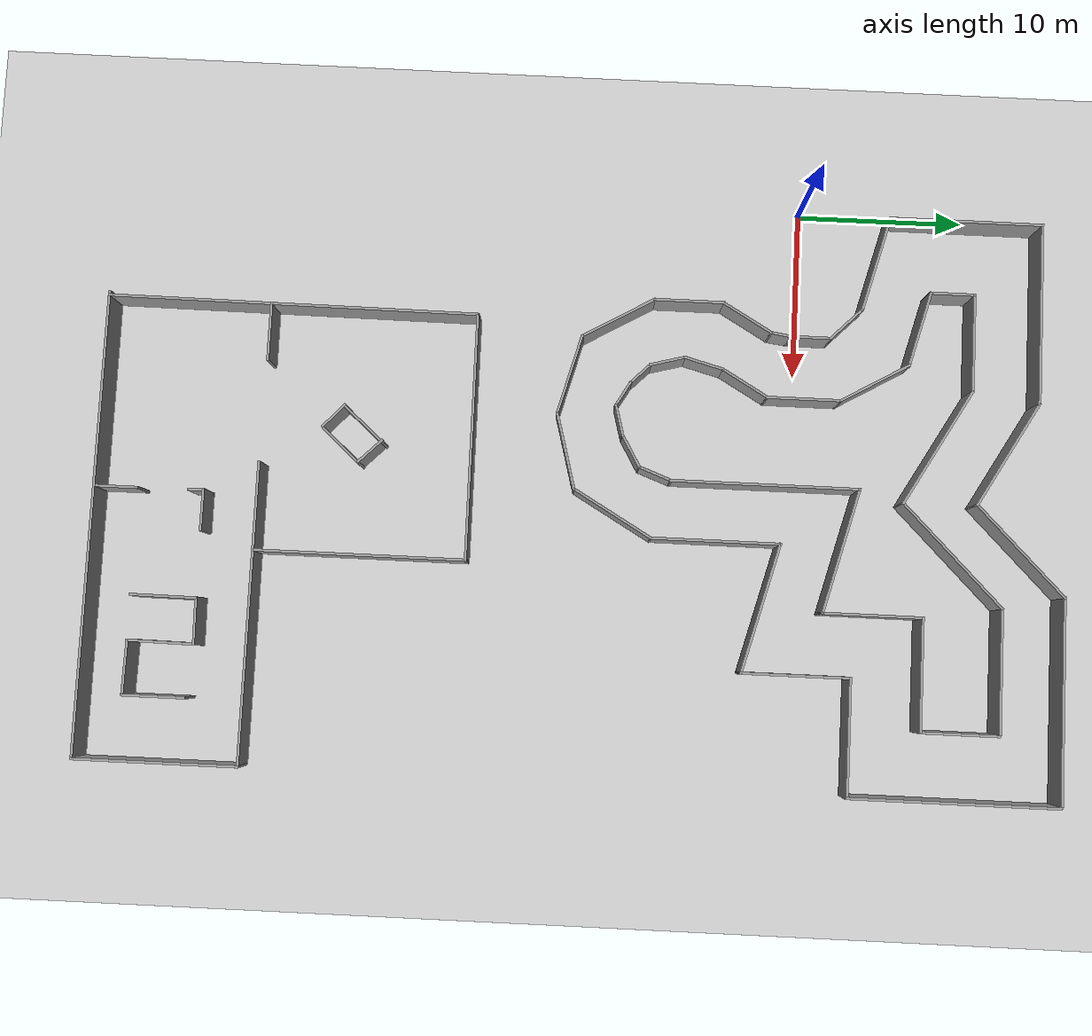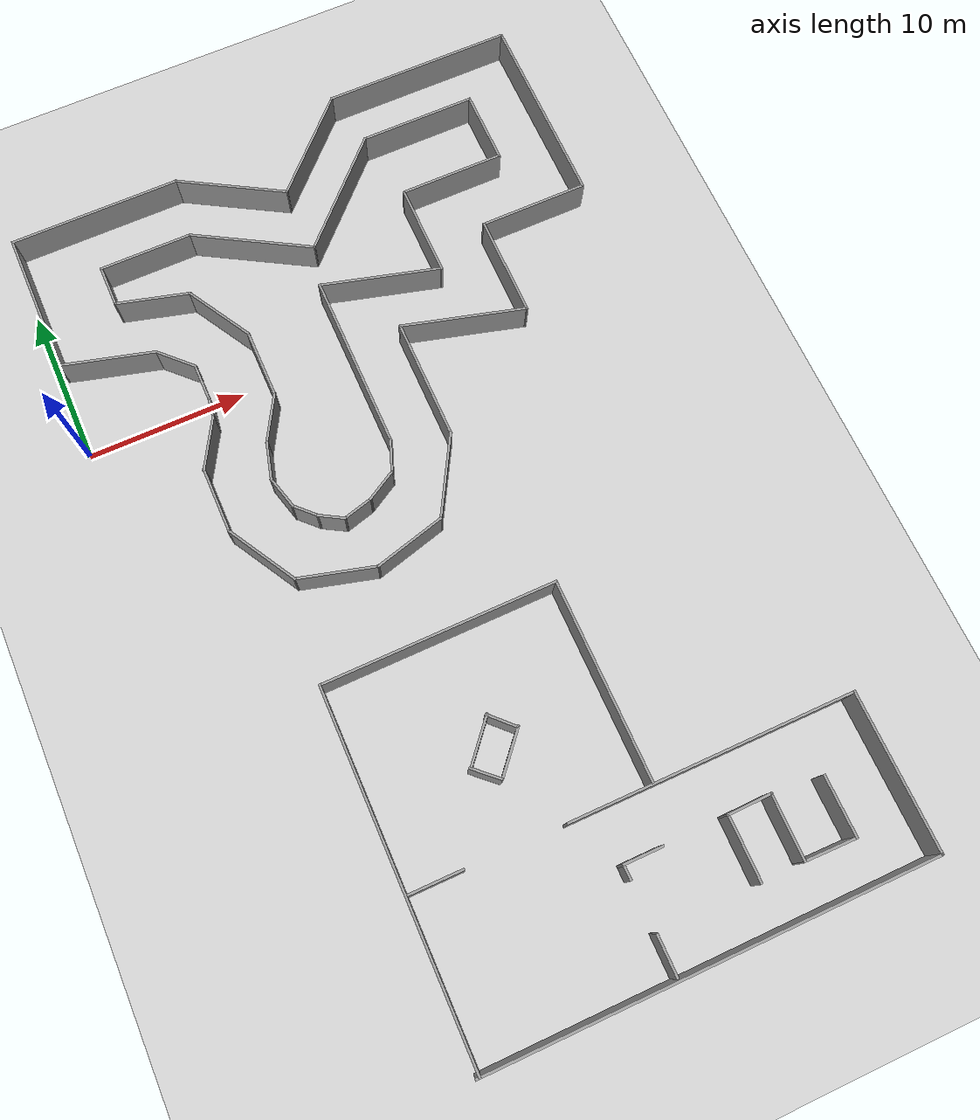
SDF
<sdf version="1.7">
 <world name="default">
  <model name="ground_plane">
   <static>1</static>
   <link name="link">
    <collision name="collision">
     <geometry><plane><normal>0 0 1</normal><size>100 100</size></plane></geometry>
     <surface><friction><ode><mu>100</mu><mu2>50</mu2></ode></friction></surface>
    </collision>
    <visual name="visual">
     <cast_shadows>0</cast_shadows>
     <geometry><plane><normal>0 0 1</normal><size>100 100</size></plane></geometry>
     <material>
      <script><uri>file://media/materials/scripts/gazebo.material</uri><name>Gazebo/Grey</name></script>
     </material>
    </visual>
   </link>
  </model>
  <model name="map2-Scaled2.5">
   <pose>17.6419 0.92612 0 0 -0 0</pose>
   <link name="Wall_39">
    <collision name="Wall_39_Collision">
     <geometry><box><size>6 0.15 2.5</size></box></geometry>
     <pose>0 0 1.25 0 -0 0</pose>
    </collision>
    <visual name="Wall_39_Visual">
     <pose>0 0 1.25 0 -0 0</pose>
     <geometry><box><size>6 0.15 2.5</size></box></geometry>
     <material>
      <script><uri>file://media/materials/scripts/gazebo.material</uri><name>Gazebo/Grey</name></script>
      <ambient>1 1 1 1</ambient>
     </material>
     <meta><layer>0</layer></meta>
    </visual>
    <pose>-14.3142 3.53465 0 0 -0 2.87979</pose>
   </link>
   <link name="Wall_40">
    <collision name="Wall_40_Collision">
     <geometry><box><size>9.25 0.15 2.5</size></box></geometry>
     <pose>0 0 1.25 0 -0 0</pose>
    </collision>
    <visual name="Wall_40_Visual">
     <pose>0 0 1.25 0 -0 0</pose>
     <geometry><box><size>9.25 0.15 2.5</size></box></geometry>
     <material>
      <script><uri>file://media/materials/scripts/gazebo.material</uri><name>Gazebo/Grey</name></script>
      <ambient>1 1 1 1</ambient>
     </material>
     <meta><layer>0</layer></meta>
    </visual>
    <pose>-17.1396 8.8417 0 0 -0 1.5708</pose>
   </link>
   <link name="Wall_41">
    <collision name="Wall_41_Collision">
     <geometry><box><size>11 0.15 2.5</size></box></geometry>
     <pose>0 0 1.25 0 -0 0</pose>
    </collision>
    <visual name="Wall_41_Visual">
     <pose>0 0 1.25 0 -0 0</pose>
     <geometry><box><size>11 0.15 2.5</size></box></geometry>
     <material>
      <script><uri>file://media/materials/scripts/gazebo.material</uri><name>Gazebo/Grey</name></script>
      <ambient>1 1 1 1</ambient>
     </material>
     <meta><layer>0</layer></meta>
    </visual>
    <pose>-11.7146 13.3917 0 0 -0 0</pose>
   </link>
   <link name="Wall_42">
    <collision name="Wall_42_Collision">
     <geometry><box><size>7.25 0.15 2.5</size></box></geometry>
     <pose>0 0 1.25 0 -0 0</pose>
    </collision>
    <visual name="Wall_42_Visual">
     <pose>0 0 1.25 0 -0 0</pose>
     <geometry><box><size>7.25 0.15 2.5</size></box></geometry>
     <material>
      <script><uri>file://media/materials/scripts/gazebo.material</uri><name>Gazebo/Grey</name></script>
      <ambient>1 1 1 1</ambient>
     </material>
     <meta><layer>0</layer></meta>
    </visual>
    <pose>-3.21519 11.6167 0 0 -0 -0.523599</pose>
   </link>
   <link name="Wall_43">
    <collision name="Wall_43_Collision">
     <geometry><box><size>7.5 0.15 2.5</size></box></geometry>
     <pose>0 0 1.25 0 -0 0</pose>
    </collision>
    <visual name="Wall_43_Visual">
     <pose>0 0 1.25 0 -0 0</pose>
     <geometry><box><size>7.5 0.15 2.5</size></box></geometry>
     <material>
      <script><uri>file://media/materials/scripts/gazebo.material</uri><name>Gazebo/Grey</name></script>
      <ambient>1 1 1 1</ambient>
     </material>
     <meta><layer>0</layer></meta>
    </visual>
    <pose>2.45782 12.4403 0 0 -0 0.785398</pose>
   </link>
   <link name="Wall_44">
    <collision name="Wall_44_Collision">
     <geometry><box><size>12.25 0.15 2.5</size></box></geometry>
     <pose>0 0 1.25 0 -0 0</pose>
    </collision>
    <visual name="Wall_44_Visual">
     <pose>0 0 1.25 0 -0 0</pose>
     <geometry><box><size>12.25 0.15 2.5</size></box></geometry>
     <material>
      <script><uri>file://media/materials/scripts/gazebo.material</uri><name>Gazebo/Grey</name></script>
      <ambient>1 1 1 1</ambient>
     </material>
     <meta><layer>0</layer></meta>
    </visual>
    <pose>11.1064 15.0389 0 0 -0 0</pose>
   </link>
   <link name="Wall_45">
    <collision name="Wall_45_Collision">
     <geometry><box><size>12.5 0.15 2.5</size></box></geometry>
     <pose>0 0 1.25 0 -0 0</pose>
    </collision>
    <visual name="Wall_45_Visual">
     <pose>0 0 1.25 0 -0 0</pose>
     <geometry><box><size>12.5 0.15 2.5</size></box></geometry>
     <material>
      <script><uri>file://media/materials/scripts/gazebo.material</uri><name>Gazebo/Grey</name></script>
      <ambient>1 1 1 1</ambient>
     </material>
     <meta><layer>0</layer></meta>
    </visual>
    <pose>17.1564 8.86393 0 0 -0 -1.5708</pose>
   </link>
   <link name="Wall_46">
    <collision name="Wall_46_Collision">
     <geometry><box><size>7 0.15 2.5</size></box></geometry>
     <pose>0 0 1.25 0 -0 0</pose>
    </collision>
    <visual name="Wall_46_Visual">
     <pose>0 0 1.25 0 -0 0</pose>
     <geometry><box><size>7 0.15 2.5</size></box></geometry>
     <material>
      <script><uri>file://media/materials/scripts/gazebo.material</uri><name>Gazebo/Grey</name></script>
      <ambient>1 1 1 1</ambient>
     </material>
     <meta><layer>0</layer></meta>
    </visual>
    <pose>13.7314 2.68893 0 0 -0 3.14159</pose>
   </link>
   <link name="Wall_47">
    <collision name="Wall_47_Collision">
     <geometry><box><size>6.5 0.15 2.5</size></box></geometry>
     <pose>0 0 1.25 0 -0 0</pose>
    </collision>
    <visual name="Wall_47_Visual">
     <pose>0 0 1.25 0 -0 0</pose>
     <geometry><box><size>6.5 0.15 2.5</size></box></geometry>
     <material>
      <script><uri>file://media/materials/scripts/gazebo.material</uri><name>Gazebo/Grey</name></script>
      <ambient>1 1 1 1</ambient>
     </material>
     <meta><layer>0</layer></meta>
    </visual>
    <pose>10.3064 -0.486068 0 0 -0 -1.5708</pose>
   </link>
   <link name="Wall_48">
    <collision name="Wall_48_Collision">
     <geometry><box><size>8 0.15 2.5</size></box></geometry>
     <pose>0 0 1.25 0 -0 0</pose>
    </collision>
    <visual name="Wall_48_Visual">
     <pose>0 0 1.25 0 -0 0</pose>
     <geometry><box><size>8 0.15 2.5</size></box></geometry>
     <material>
      <script><uri>file://media/materials/scripts/gazebo.material</uri><name>Gazebo/Grey</name></script>
      <ambient>1 1 1 1</ambient>
     </material>
     <meta><layer>0</layer></meta>
    </visual>
    <pose>6.51518 -2.6452 0 0 -0 2.87979</pose>
   </link>
   <link name="Wall_49">
    <collision name="Wall_49_Collision">
     <geometry><box><size>7.75 0.15 2.5</size></box></geometry>
     <pose>0 0 1.25 0 -0 0</pose>
    </collision>
    <visual name="Wall_49_Visual">
     <pose>0 0 1.25 0 -0 0</pose>
     <geometry><box><size>7.75 0.15 2.5</size></box></geometry>
     <material>
      <script><uri>file://media/materials/scripts/gazebo.material</uri><name>Gazebo/Grey</name></script>
      <ambient>1 1 1 1</ambient>
     </material>
     <meta><layer>0</layer></meta>
    </visual>
    <pose>2.72392 -5.42934 0 0 -0 -1.5708</pose>
   </link>
   <link name="Wall_50">
    <collision name="Wall_50_Collision">
     <geometry><box><size>5.5 0.15 2.5</size></box></geometry>
     <pose>0 0 1.25 0 -0 0</pose>
    </collision>
    <visual name="Wall_50_Visual">
     <pose>0 0 1.25 0 -0 0</pose>
     <geometry><box><size>5.5 0.15 2.5</size></box></geometry>
     <material>
      <script><uri>file://media/materials/scripts/gazebo.material</uri><name>Gazebo/Grey</name></script>
      <ambient>1 1 1 1</ambient>
     </material>
     <meta><layer>0</layer></meta>
    </visual>
    <pose>1.38642 -11.546 0 0 -0 -2.0944</pose>
   </link>
   <link name="Wall_51">
    <collision name="Wall_51_Collision">
     <geometry><box><size>4.75 0.15 2.5</size></box></geometry>
     <pose>0 0 1.25 0 -0 0</pose>
    </collision>
    <visual name="Wall_51_Visual">
     <pose>0 0 1.25 0 -0 0</pose>
     <geometry><box><size>4.75 0.15 2.5</size></box></geometry>
     <material>
      <script><uri>file://media/materials/scripts/gazebo.material</uri><name>Gazebo/Grey</name></script>
      <ambient>1 1 1 1</ambient>
     </material>
     <meta><layer>0</layer></meta>
    </visual>
    <pose>-2.17271 -14.4579 0 0 -0 -2.87979</pose>
   </link>
   <link name="Wall_52">
    <collision name="Wall_52_Collision">
     <geometry><box><size>5 0.15 2.5</size></box></geometry>
     <pose>0 0 1.25 0 -0 0</pose>
    </collision>
    <visual name="Wall_52_Visual">
     <pose>0 0 1.25 0 -0 0</pose>
     <geometry><box><size>5 0.15 2.5</size></box></geometry>
     <material>
      <script><uri>file://media/materials/scripts/gazebo.material</uri><name>Gazebo/Grey</name></script>
      <ambient>1 1 1 1</ambient>
     </material>
     <meta><layer>0</layer></meta>
    </visual>
    <pose>-6.73671 -14.4255 0 0 -0 2.87979</pose>
   </link>
   <link name="Wall_53">
    <collision name="Wall_53_Collision">
     <geometry><box><size>5 0.15 2.5</size></box></geometry>
     <pose>0 0 1.25 0 -0 0</pose>
    </collision>
    <visual name="Wall_53_Visual">
     <pose>0 0 1.25 0 -0 0</pose>
     <geometry><box><size>5 0.15 2.5</size></box></geometry>
     <material>
      <script><uri>file://media/materials/scripts/gazebo.material</uri><name>Gazebo/Grey</name></script>
      <ambient>1 1 1 1</ambient>
     </material>
     <meta><layer>0</layer></meta>
    </visual>
    <pose>-10.2916 -11.6978 0 0 -0 2.0944</pose>
   </link>
   <link name="Wall_54">
    <collision name="Wall_54_Collision">
     <geometry><box><size>4.25 0.15 2.5</size></box></geometry>
     <pose>0 0 1.25 0 -0 0</pose>
    </collision>
    <visual name="Wall_54_Visual">
     <pose>0 0 1.25 0 -0 0</pose>
     <geometry><box><size>4.25 0.15 2.5</size></box></geometry>
     <material>
      <script><uri>file://media/materials/scripts/gazebo.material</uri><name>Gazebo/Grey</name></script>
      <ambient>1 1 1 1</ambient>
     </material>
     <meta><layer>0</layer></meta>
    </visual>
    <pose>-11.5041 -7.54765 0 0 -0 1.5708</pose>
   </link>
   <link name="Wall_55">
    <collision name="Wall_55_Collision">
     <geometry><box><size>3.5 0.15 2.5</size></box></geometry>
     <pose>0 0 1.25 0 -0 0</pose>
    </collision>
    <visual name="Wall_55_Visual">
     <pose>0 0 1.25 0 -0 0</pose>
     <geometry><box><size>3.5 0.15 2.5</size></box></geometry>
     <material>
      <script><uri>file://media/materials/scripts/gazebo.material</uri><name>Gazebo/Grey</name></script>
      <ambient>1 1 1 1</ambient>
     </material>
     <meta><layer>0</layer></meta>
    </visual>
    <pose>-10.6666 -4.04705 0 0 -0 1.0472</pose>
   </link>
   <link name="Wall_57">
    <collision name="Wall_57_Collision">
     <geometry><box><size>3.25 0.15 2.5</size></box></geometry>
     <pose>0 0 1.25 0 -0 0</pose>
    </collision>
    <visual name="Wall_57_Visual">
     <pose>0 0 1.25 0 -0 0</pose>
     <geometry><box><size>3.25 0.15 2.5</size></box></geometry>
     <material>
      <script><uri>file://media/materials/scripts/gazebo.material</uri><name>Gazebo/Grey</name></script>
      <ambient>1 1 1 1</ambient>
     </material>
     <meta><layer>0</layer></meta>
    </visual>
    <pose>-6.71391 -4.04005 0 0 -0 1.0472</pose>
   </link>
   <link name="Wall_58">
    <collision name="Wall_58_Collision">
     <geometry><box><size>4.5 0.15 2.5</size></box></geometry>
     <pose>0 0 1.25 0 -0 0</pose>
    </collision>
    <visual name="Wall_58_Visual">
     <pose>0 0 1.25 0 -0 0</pose>
     <geometry><box><size>4.5 0.15 2.5</size></box></geometry>
     <material>
      <script><uri>file://media/materials/scripts/gazebo.material</uri><name>Gazebo/Grey</name></script>
      <ambient>1 1 1 1</ambient>
     </material>
     <meta><layer>0</layer></meta>
    </visual>
    <pose>-5.93891 -0.522716 0 0 -0 1.5708</pose>
   </link>
   <link name="Wall_59">
    <collision name="Wall_59_Collision">
     <geometry><box><size>4.75 0.15 2.5</size></box></geometry>
     <pose>0 0 1.25 0 -0 0</pose>
    </collision>
    <visual name="Wall_59_Visual">
     <pose>0 0 1.25 0 -0 0</pose>
     <geometry><box><size>4.75 0.15 2.5</size></box></geometry>
     <material>
      <script><uri>file://media/materials/scripts/gazebo.material</uri><name>Gazebo/Grey</name></script>
      <ambient>1 1 1 1</ambient>
     </material>
     <meta><layer>0</layer></meta>
    </visual>
    <pose>-7.08891 3.64414 0 0 -0 2.0944</pose>
   </link>
   <link name="Wall_60">
    <collision name="Wall_60_Collision">
     <geometry><box><size>4.75 0.15 2.5</size></box></geometry>
     <pose>0 0 1.25 0 -0 0</pose>
    </collision>
    <visual name="Wall_60_Visual">
     <pose>0 0 1.25 0 -0 0</pose>
     <geometry><box><size>4.75 0.15 2.5</size></box></geometry>
     <material>
      <script><uri>file://media/materials/scripts/gazebo.material</uri><name>Gazebo/Grey</name></script>
      <ambient>1 1 1 1</ambient>
     </material>
     <meta><layer>0</layer></meta>
    </visual>
    <pose>-10.4605 6.23128 0 0 -0 2.87979</pose>
   </link>
   <link name="Wall_61">
    <collision name="Wall_61_Collision">
     <geometry><box><size>2.75 0.15 2.5</size></box></geometry>
     <pose>0 0 1.25 0 -0 0</pose>
    </collision>
    <visual name="Wall_61_Visual">
     <pose>0 0 1.25 0 -0 0</pose>
     <geometry><box><size>2.75 0.15 2.5</size></box></geometry>
     <material>
      <script><uri>file://media/materials/scripts/gazebo.material</uri><name>Gazebo/Grey</name></script>
      <ambient>1 1 1 1</ambient>
     </material>
     <meta><layer>0</layer></meta>
    </visual>
    <pose>-12.6822 8.12657 0 0 -0 1.5708</pose>
   </link>
   <link name="Wall_62">
    <collision name="Wall_62_Collision">
     <geometry><box><size>6 0.15 2.5</size></box></geometry>
     <pose>0 0 1.25 0 -0 0</pose>
    </collision>
    <visual name="Wall_62_Visual">
     <pose>0 0 1.25 0 -0 0</pose>
     <geometry><box><size>6 0.15 2.5</size></box></geometry>
     <material>
      <script><uri>file://media/materials/scripts/gazebo.material</uri><name>Gazebo/Grey</name></script>
      <ambient>1 1 1 1</ambient>
     </material>
     <meta><layer>0</layer></meta>
    </visual>
    <pose>-9.75717 9.42657 0 0 -0 0</pose>
   </link>
   <link name="Wall_63">
    <collision name="Wall_63_Collision">
     <geometry><box><size>8 0.15 2.5</size></box></geometry>
     <pose>0 0 1.25 0 -0 0</pose>
    </collision>
    <visual name="Wall_63_Visual">
     <pose>0 0 1.25 0 -0 0</pose>
     <geometry><box><size>8 0.15 2.5</size></box></geometry>
     <material>
      <script><uri>file://media/materials/scripts/gazebo.material</uri><name>Gazebo/Grey</name></script>
      <ambient>1 1 1 1</ambient>
     </material>
     <meta><layer>0</layer></meta>
    </visual>
    <pose>-3.43302 7.46407 0 0 -0 -0.523599</pose>
   </link>
   <link name="Wall_64">
    <collision name="Wall_64_Collision">
     <geometry><box><size>8.5 0.15 2.5</size></box></geometry>
     <pose>0 0 1.25 0 -0 0</pose>
    </collision>
    <visual name="Wall_64_Visual">
     <pose>0 0 1.25 0 -0 0</pose>
     <geometry><box><size>8.5 0.15 2.5</size></box></geometry>
     <material>
      <script><uri>file://media/materials/scripts/gazebo.material</uri><name>Gazebo/Grey</name></script>
      <ambient>1 1 1 1</ambient>
     </material>
     <meta><layer>0</layer></meta>
    </visual>
    <pose>2.9183 8.45374 0 0 -0 0.785398</pose>
   </link>
   <link name="Wall_65">
    <collision name="Wall_65_Collision">
     <geometry><box><size>7.5 0.15 2.5</size></box></geometry>
     <pose>0 0 1.25 0 -0 0</pose>
    </collision>
    <visual name="Wall_65_Visual">
     <pose>0 0 1.25 0 -0 0</pose>
     <geometry><box><size>7.5 0.15 2.5</size></box></geometry>
     <material>
      <script><uri>file://media/materials/scripts/gazebo.material</uri><name>Gazebo/Grey</name></script>
      <ambient>1 1 1 1</ambient>
     </material>
     <meta><layer>0</layer></meta>
    </visual>
    <pose>9.54547 11.4059 0 0 -0 0</pose>
   </link>
   <link name="Wall_66">
    <collision name="Wall_66_Collision">
     <geometry><box><size>4.75 0.15 2.5</size></box></geometry>
     <pose>0 0 1.25 0 -0 0</pose>
    </collision>
    <visual name="Wall_66_Visual">
     <pose>0 0 1.25 0 -0 0</pose>
     <geometry><box><size>4.75 0.15 2.5</size></box></geometry>
     <material>
      <script><uri>file://media/materials/scripts/gazebo.material</uri><name>Gazebo/Grey</name></script>
      <ambient>1 1 1 1</ambient>
     </material>
     <meta><layer>0</layer></meta>
    </visual>
    <pose>13.2205 9.10591 0 0 -0 -1.5708</pose>
   </link>
   <link name="Wall_67">
    <collision name="Wall_67_Collision">
     <geometry><box><size>6.75 0.15 2.5</size></box></geometry>
     <pose>0 0 1.25 0 -0 0</pose>
    </collision>
    <visual name="Wall_67_Visual">
     <pose>0 0 1.25 0 -0 0</pose>
     <geometry><box><size>6.75 0.15 2.5</size></box></geometry>
     <material>
      <script><uri>file://media/materials/scripts/gazebo.material</uri><name>Gazebo/Grey</name></script>
      <ambient>1 1 1 1</ambient>
     </material>
     <meta><layer>0</layer></meta>
    </visual>
    <pose>9.92047 6.80591 0 0 -0 3.14159</pose>
   </link>
   <link name="Wall_68">
    <collision name="Wall_68_Collision">
     <geometry><box><size>6 0.15 2.5</size></box></geometry>
     <pose>0 0 1.25 0 -0 0</pose>
    </collision>
    <visual name="Wall_68_Visual">
     <pose>0 0 1.25 0 -0 0</pose>
     <geometry><box><size>6 0.15 2.5</size></box></geometry>
     <material>
      <script><uri>file://media/materials/scripts/gazebo.material</uri><name>Gazebo/Grey</name></script>
      <ambient>1 1 1 1</ambient>
     </material>
     <meta><layer>0</layer></meta>
    </visual>
    <pose>6.62047 3.88091 0 0 -0 -1.5708</pose>
   </link>
   <link name="Wall_69">
    <collision name="Wall_69_Collision">
     <geometry><box><size>7.75 0.15 2.5</size></box></geometry>
     <pose>0 0 1.25 0 -0 0</pose>
    </collision>
    <visual name="Wall_69_Visual">
     <pose>0 0 1.25 0 -0 0</pose>
     <geometry><box><size>7.75 0.15 2.5</size></box></geometry>
     <material>
      <script><uri>file://media/materials/scripts/gazebo.material</uri><name>Gazebo/Grey</name></script>
      <ambient>1 1 1 1</ambient>
     </material>
     <meta><layer>0</layer></meta>
    </visual>
    <pose>2.94995 1.93942 0 0 -0 2.87979</pose>
   </link>
   <link name="Wall_70">
    <collision name="Wall_70_Collision">
     <geometry><box><size>11.25 0.15 2.5</size></box></geometry>
     <pose>0 0 1.25 0 -0 0</pose>
    </collision>
    <visual name="Wall_70_Visual">
     <pose>0 0 1.25 0 -0 0</pose>
     <geometry><box><size>11.25 0.15 2.5</size></box></geometry>
     <material>
      <script><uri>file://media/materials/scripts/gazebo.material</uri><name>Gazebo/Grey</name></script>
      <ambient>1 1 1 1</ambient>
     </material>
     <meta><layer>0</layer></meta>
    </visual>
    <pose>-0.720568 -2.62706 0 0 -0 -1.5708</pose>
   </link>
   <link name="Wall_72">
    <collision name="Wall_72_Collision">
     <geometry><box><size>2.75 0.15 2.5</size></box></geometry>
     <pose>0 0 1.25 0 -0 0</pose>
    </collision>
    <visual name="Wall_72_Visual">
     <pose>0 0 1.25 0 -0 0</pose>
     <geometry><box><size>2.75 0.15 2.5</size></box></geometry>
     <material>
      <script><uri>file://media/materials/scripts/gazebo.material</uri><name>Gazebo/Grey</name></script>
      <ambient>1 1 1 1</ambient>
     </material>
     <meta><layer>0</layer></meta>
    </visual>
    <pose>-10.5697 1.85837 0 0 -0 -0.785398</pose>
   </link>
   <link name="Wall_73">
    <collision name="Wall_73_Collision">
     <geometry><box><size>2.5 0.15 2.5</size></box></geometry>
     <pose>0 0 1.25 0 -0 0</pose>
    </collision>
    <visual name="Wall_73_Visual">
     <pose>0 0 1.25 0 -0 0</pose>
     <geometry><box><size>2.5 0.15 2.5</size></box></geometry>
     <material>
      <script><uri>file://media/materials/scripts/gazebo.material</uri><name>Gazebo/Grey</name></script>
      <ambient>1 1 1 1</ambient>
     </material>
     <meta><layer>0</layer></meta>
    </visual>
    <pose>-9.65044 -0.235872 0 0 -0 -1.5708</pose>
   </link>
   <link name="Wall_74">
    <collision name="Wall_74_Collision">
     <geometry><box><size>1.34897 0.15 2.5</size></box></geometry>
     <pose>0 0 1.25 0 -0 0</pose>
    </collision>
    <visual name="Wall_74_Visual">
     <pose>0 0 1.25 0 -0 0</pose>
     <geometry><box><size>1.34897 0.15 2.5</size></box></geometry>
     <material>
      <script><uri>file://media/materials/scripts/gazebo.material</uri><name>Gazebo/Grey</name></script>
      <ambient>1 1 1 1</ambient>
     </material>
     <meta><layer>0</layer></meta>
    </visual>
    <pose>-9.73976 -2.00367 0 0 -0 -1.72035</pose>
   </link>
   <link name="Wall_76">
    <collision name="Wall_76_Collision">
     <geometry><box><size>2.5 0.15 2.5</size></box></geometry>
     <pose>0 0 1.25 0 -0 0</pose>
    </collision>
    <visual name="Wall_76_Visual">
     <pose>0 0 1.25 0 -0 0</pose>
     <geometry><box><size>2.5 0.15 2.5</size></box></geometry>
     <material>
      <script><uri>file://media/materials/scripts/gazebo.material</uri><name>Gazebo/Grey</name></script>
      <ambient>1 1 1 1</ambient>
     </material>
     <meta><layer>0</layer></meta>
    </visual>
    <pose>-7.79303 -6.51736 0 0 -0 -1.8326</pose>
   </link>
   <link name="Wall_77">
    <collision name="Wall_77_Collision">
     <geometry><box><size>2.25 0.15 2.5</size></box></geometry>
     <pose>0 0 1.25 0 -0 0</pose>
    </collision>
    <visual name="Wall_77_Visual">
     <pose>0 0 1.25 0 -0 0</pose>
     <geometry><box><size>2.25 0.15 2.5</size></box></geometry>
     <material>
      <script><uri>file://media/materials/scripts/gazebo.material</uri><name>Gazebo/Grey</name></script>
      <ambient>1 1 1 1</ambient>
     </material>
     <meta><layer>0</layer></meta>
    </visual>
    <pose>-7.82538 -8.66654 0 0 -0 -1.309</pose>
   </link>
   <link name="Wall_78">
    <collision name="Wall_78_Collision">
     <geometry><box><size>1.75 0.15 2.5</size></box></geometry>
     <pose>0 0 1.25 0 -0 0</pose>
    </collision>
    <visual name="Wall_78_Visual">
     <pose>0 0 1.25 0 -0 0</pose>
     <geometry><box><size>1.75 0.15 2.5</size></box></geometry>
     <material>
      <script><uri>file://media/materials/scripts/gazebo.material</uri><name>Gazebo/Grey</name></script>
      <ambient>1 1 1 1</ambient>
     </material>
     <meta><layer>0</layer></meta>
    </visual>
    <pose>-6.98793 -10.2464 0 0 -0 -0.785398</pose>
   </link>
   <link name="Wall_79">
    <collision name="Wall_79_Collision">
     <geometry><box><size>1.75 0.15 2.5</size></box></geometry>
     <pose>0 0 1.25 0 -0 0</pose>
    </collision>
    <visual name="Wall_79_Visual">
     <pose>0 0 1.25 0 -0 0</pose>
     <geometry><box><size>1.75 0.15 2.5</size></box></geometry>
     <material>
      <script><uri>file://media/materials/scripts/gazebo.material</uri><name>Gazebo/Grey</name></script>
      <ambient>1 1 1 1</ambient>
     </material>
     <meta><layer>0</layer></meta>
    </visual>
    <pose>-5.72943 -11.2121 0 0 -0 -0.523599</pose>
   </link>
   <link name="Wall_80">
    <collision name="Wall_80_Collision">
     <geometry><box><size>2 0.15 2.5</size></box></geometry>
     <pose>0 0 1.25 0 -0 0</pose>
    </collision>
    <visual name="Wall_80_Visual">
     <pose>0 0 1.25 0 -0 0</pose>
     <geometry><box><size>2 0.15 2.5</size></box></geometry>
     <material>
      <script><uri>file://media/materials/scripts/gazebo.material</uri><name>Gazebo/Grey</name></script>
      <ambient>1 1 1 1</ambient>
     </material>
     <meta><layer>0</layer></meta>
    </visual>
    <pose>-4.14313 -11.3727 0 0 -0 0.261799</pose>
   </link>
   <link name="Wall_81">
    <collision name="Wall_81_Collision">
     <geometry><box><size>2.25 0.15 2.5</size></box></geometry>
     <pose>0 0 1.25 0 -0 0</pose>
    </collision>
    <visual name="Wall_81_Visual">
     <pose>0 0 1.25 0 -0 0</pose>
     <geometry><box><size>2.25 0.15 2.5</size></box></geometry>
     <material>
      <script><uri>file://media/materials/scripts/gazebo.material</uri><name>Gazebo/Grey</name></script>
      <ambient>1 1 1 1</ambient>
     </material>
     <meta><layer>0</layer></meta>
    </visual>
    <pose>-2.34032 -10.6083 0 0 -0 0.523599</pose>
   </link>
   <link name="Wall_82">
    <collision name="Wall_82_Collision">
     <geometry><box><size>2.18433 0.15 2.5</size></box></geometry>
     <pose>0 0 1.25 0 -0 0</pose>
    </collision>
    <visual name="Wall_82_Visual">
     <pose>0 0 1.25 0 -0 0</pose>
     <geometry><box><size>2.18433 0.15 2.5</size></box></geometry>
     <material>
      <script><uri>file://media/materials/scripts/gazebo.material</uri><name>Gazebo/Grey</name></script>
      <ambient>1 1 1 1</ambient>
     </material>
     <meta><layer>0</layer></meta>
    </visual>
    <pose>-1.07578 -9.13019 0 0 -0 1.21406</pose>
   </link>
   <static>1</static>
  </model>
  <model name="test3">
   <pose>20.9796 -30.0878 0 0 -0 0</pose>
   <link name="Wall_0">
    <collision name="Wall_0_Collision">
     <geometry><box><size>22.133 0.15 2.5</size></box></geometry>
     <pose>0 0 1.25 0 -0 0</pose>
    </collision>
    <visual name="Wall_0_Visual">
     <pose>0 0 1.25 0 -0 0</pose>
     <geometry><box><size>22.133 0.15 2.5</size></box></geometry>
     <material>
      <script><uri>file://media/materials/scripts/gazebo.material</uri><name>Gazebo/Grey</name></script>
      <ambient>1 1 1 1</ambient>
     </material>
     <meta><layer>0</layer></meta>
    </visual>
    <pose>-13.4868 -0.030616 0 0 -0 -1.57638</pose>
   </link>
   <link name="Wall_1">
    <collision name="Wall_1_Collision">
     <geometry><box><size>27.5678 0.15 2.5</size></box></geometry>
     <pose>0 0 1.25 0 -0 0</pose>
    </collision>
    <visual name="Wall_1_Visual">
     <pose>0 0 1.25 0 -0 0</pose>
     <geometry><box><size>27.5678 0.15 2.5</size></box></geometry>
     <material>
      <script><uri>file://media/materials/scripts/gazebo.material</uri><name>Gazebo/Grey</name></script>
      <ambient>1 1 1 1</ambient>
     </material>
     <meta><layer>0</layer></meta>
    </visual>
    <pose>-0.023189 -11.0219 0 0 -0 0</pose>
   </link>
   <link name="Wall_10">
    <collision name="Wall_10_Collision">
     <geometry><box><size>2.5 0.15 2.5</size></box></geometry>
     <pose>0 0 1.25 0 -0 0</pose>
    </collision>
    <visual name="Wall_10_Visual">
     <pose>0 0 1.25 0 -0 0</pose>
     <geometry><box><size>2.5 0.15 2.5</size></box></geometry>
     <material>
      <script><uri>file://media/materials/scripts/gazebo.material</uri><name>Gazebo/Grey</name></script>
      <ambient>1 1 1 1</ambient>
     </material>
     <meta><layer>0</layer></meta>
    </visual>
    <pose>-0.992914 -4.5676 0 0 -0 0</pose>
   </link>
   <link name="Wall_13">
    <collision name="Wall_13_Collision">
     <geometry><box><size>2.5 0.15 2.5</size></box></geometry>
     <pose>0 0 1.25 0 -0 0</pose>
    </collision>
    <visual name="Wall_13_Visual">
     <pose>0 0 1.25 0 -0 0</pose>
     <geometry><box><size>2.5 0.15 2.5</size></box></geometry>
     <material>
      <script><uri>file://media/materials/scripts/gazebo.material</uri><name>Gazebo/Grey</name></script>
      <ambient>1 1 1 1</ambient>
     </material>
     <meta><layer>0</layer></meta>
    </visual>
    <pose>-2.12154 -9.65347 0 0 -0 -1.5708</pose>
   </link>
   <link name="Wall_15">
    <collision name="Wall_15_Collision">
     <geometry><box><size>3.9528 0.15 2.5</size></box></geometry>
     <pose>0 0 1.25 0 -0 0</pose>
    </collision>
    <visual name="Wall_15_Visual">
     <pose>0 0 1.25 0 -0 0</pose>
     <geometry><box><size>3.9528 0.15 2.5</size></box></geometry>
     <material>
      <script><uri>file://media/materials/scripts/gazebo.material</uri><name>Gazebo/Grey</name></script>
      <ambient>1 1 1 1</ambient>
     </material>
     <meta><layer>0</layer></meta>
    </visual>
    <pose>4.15504 -6.48438 0 0 -0 1.56253</pose>
   </link>
   <link name="Wall_16">
    <collision name="Wall_16_Collision">
     <geometry><box><size>2.82504 0.15 2.5</size></box></geometry>
     <pose>0 0 1.25 0 -0 0</pose>
    </collision>
    <visual name="Wall_16_Visual">
     <pose>0 0 1.25 0 -0 0</pose>
     <geometry><box><size>2.82504 0.15 2.5</size></box></geometry>
     <material>
      <script><uri>file://media/materials/scripts/gazebo.material</uri><name>Gazebo/Grey</name></script>
      <ambient>1 1 1 1</ambient>
     </material>
     <meta><layer>0</layer></meta>
    </visual>
    <pose>5.50807 -4.49853 0 0 -0 0.017338</pose>
   </link>
   <link name="Wall_17">
    <collision name="Wall_17_Collision">
     <geometry><box><size>3.95295 0.15 2.5</size></box></geometry>
     <pose>0 0 1.25 0 -0 0</pose>
    </collision>
    <visual name="Wall_17_Visual">
     <pose>0 0 1.25 0 -0 0</pose>
     <geometry><box><size>3.95295 0.15 2.5</size></box></geometry>
     <material>
      <script><uri>file://media/materials/scripts/gazebo.material</uri><name>Gazebo/Grey</name></script>
      <ambient>1 1 1 1</ambient>
     </material>
     <meta><layer>0</layer></meta>
    </visual>
    <pose>6.8222 -6.43801 0 0 -0 -1.58299</pose>
   </link>
   <link name="Wall_19">
    <collision name="Wall_19_Collision">
     <geometry><box><size>3.5 0.15 2.5</size></box></geometry>
     <pose>0 0 1.25 0 -0 0</pose>
    </collision>
    <visual name="Wall_19_Visual">
     <pose>0 0 1.25 0 -0 0</pose>
     <geometry><box><size>3.5 0.15 2.5</size></box></geometry>
     <material>
      <script><uri>file://media/materials/scripts/gazebo.material</uri><name>Gazebo/Grey</name></script>
      <ambient>1 1 1 1</ambient>
     </material>
     <meta><layer>0</layer></meta>
    </visual>
    <pose>-11.8035 -1.33644 0 0 -0 0</pose>
   </link>
   <link name="Wall_2">
    <collision name="Wall_2_Collision">
     <geometry><box><size>9.75 0.15 2.5</size></box></geometry>
     <pose>0 0 1.25 0 -0 0</pose>
    </collision>
    <visual name="Wall_2_Visual">
     <pose>0 0 1.25 0 -0 0</pose>
     <geometry><box><size>9.75 0.15 2.5</size></box></geometry>
     <material>
      <script><uri>file://media/materials/scripts/gazebo.material</uri><name>Gazebo/Grey</name></script>
      <ambient>1 1 1 1</ambient>
     </material>
     <meta><layer>0</layer></meta>
    </visual>
    <pose>13.7321 -6.22195 0 0 -0 1.5708</pose>
   </link>
   <link name="Wall_25">
    <collision name="Wall_25_Collision">
     <geometry><box><size>3.13281 0.15 2.5</size></box></geometry>
     <pose>0 0 1.25 0 -0 0</pose>
    </collision>
    <visual name="Wall_25_Visual">
     <pose>0 0 1.25 0 -0 0</pose>
     <geometry><box><size>3.13281 0.15 2.5</size></box></geometry>
     <material>
      <script><uri>file://media/materials/scripts/gazebo.material</uri><name>Gazebo/Grey</name></script>
      <ambient>1 1 1 1</ambient>
     </material>
     <meta><layer>0</layer></meta>
    </visual>
    <pose>-6.51168 4.59376 0 0 -0 0.854606</pose>
   </link>
   <link name="Wall_26">
    <collision name="Wall_26_Collision">
     <geometry><box><size>2 0.15 2.5</size></box></geometry>
     <pose>0 0 1.25 0 -0 0</pose>
    </collision>
    <visual name="Wall_26_Visual">
     <pose>0 0 1.25 0 -0 0</pose>
     <geometry><box><size>2 0.15 2.5</size></box></geometry>
     <material>
      <script><uri>file://media/materials/scripts/gazebo.material</uri><name>Gazebo/Grey</name></script>
      <ambient>1 1 1 1</ambient>
     </material>
     <meta><layer>0</layer></meta>
    </visual>
    <pose>-4.93981 5.06467 0 0 -0 -0.785398</pose>
   </link>
   <link name="Wall_27">
    <collision name="Wall_27_Collision">
     <geometry><box><size>3.04606 0.15 2.5</size></box></geometry>
     <pose>0 0 1.25 0 -0 0</pose>
    </collision>
    <visual name="Wall_27_Visual">
     <pose>0 0 1.25 0 -0 0</pose>
     <geometry><box><size>3.04606 0.15 2.5</size></box></geometry>
     <material>
      <script><uri>file://media/materials/scripts/gazebo.material</uri><name>Gazebo/Grey</name></script>
      <ambient>1 1 1 1</ambient>
     </material>
     <meta><layer>0</layer></meta>
    </visual>
    <pose>-5.18515 3.32719 0 0 -0 -2.29626</pose>
   </link>
   <link name="Wall_28">
    <collision name="Wall_28_Collision">
     <geometry><box><size>1.96918 0.15 2.5</size></box></geometry>
     <pose>0 0 1.25 0 -0 0</pose>
    </collision>
    <visual name="Wall_28_Visual">
     <pose>0 0 1.25 0 -0 0</pose>
     <geometry><box><size>1.96918 0.15 2.5</size></box></geometry>
     <material>
      <script><uri>file://media/materials/scripts/gazebo.material</uri><name>Gazebo/Grey</name></script>
      <ambient>1 1 1 1</ambient>
     </material>
     <meta><layer>0</layer></meta>
    </visual>
    <pose>-6.94102 2.79495 0 0 -0 2.40283</pose>
   </link>
   <link name="Wall_3">
    <collision name="Wall_3_Collision">
     <geometry><box><size>17.7891 0.15 2.5</size></box></geometry>
     <pose>0 0 1.25 0 -0 0</pose>
    </collision>
    <visual name="Wall_3_Visual">
     <pose>0 0 1.25 0 -0 0</pose>
     <geometry><box><size>17.7891 0.15 2.5</size></box></geometry>
     <material>
      <script><uri>file://media/materials/scripts/gazebo.material</uri><name>Gazebo/Grey</name></script>
      <ambient>1 1 1 1</ambient>
     </material>
     <meta><layer>0</layer></meta>
    </visual>
    <pose>4.86614 -1.42195 0 0 -0 3.14159</pose>
   </link>
   <link name="Wall_30">
    <collision name="Wall_30_Collision">
     <geometry><box><size>12.5 0.15 2.5</size></box></geometry>
     <pose>0 0 1.25 0 -0 0</pose>
    </collision>
    <visual name="Wall_30_Visual">
     <pose>0 0 1.25 0 -0 0</pose>
     <geometry><box><size>12.5 0.15 2.5</size></box></geometry>
     <material>
      <script><uri>file://media/materials/scripts/gazebo.material</uri><name>Gazebo/Grey</name></script>
      <ambient>1 1 1 1</ambient>
     </material>
     <meta><layer>0</layer></meta>
    </visual>
    <pose>1.20858 4.84705 0 0 -0 -1.5708</pose>
   </link>
   <link name="Wall_33">
    <collision name="Wall_33_Collision">
     <geometry><box><size>3.75 0.15 2.5</size></box></geometry>
     <pose>0 0 1.25 0 -0 0</pose>
    </collision>
    <visual name="Wall_33_Visual">
     <pose>0 0 1.25 0 -0 0</pose>
     <geometry><box><size>3.75 0.15 2.5</size></box></geometry>
     <material>
      <script><uri>file://media/materials/scripts/gazebo.material</uri><name>Gazebo/Grey</name></script>
      <ambient>1 1 1 1</ambient>
     </material>
     <meta><layer>0</layer></meta>
    </visual>
    <pose>9.96035 -6.59601 0 0 -0 1.5708</pose>
   </link>
   <link name="Wall_39">
    <collision name="Wall_39_Collision">
     <geometry><box><size>3.31184 0.15 2.5</size></box></geometry>
     <pose>0 0 1.25 0 -0 0</pose>
    </collision>
    <visual name="Wall_39_Visual">
     <pose>0 0 1.25 0 -0 0</pose>
     <geometry><box><size>3.31184 0.15 2.5</size></box></geometry>
     <material>
      <script><uri>file://media/materials/scripts/gazebo.material</uri><name>Gazebo/Grey</name></script>
      <ambient>1 1 1 1</ambient>
     </material>
     <meta><layer>0</layer></meta>
    </visual>
    <pose>8.37968 -8.36767 0 0 -0 -0.017923</pose>
   </link>
   <link name="Wall_5">
    <collision name="Wall_5_Collision">
     <geometry><box><size>14.7228 0.15 2.5</size></box></geometry>
     <pose>0 0 1.25 0 -0 0</pose>
    </collision>
    <visual name="Wall_5_Visual">
     <pose>0 0 1.25 0 -0 0</pose>
     <geometry><box><size>14.7228 0.15 2.5</size></box></geometry>
     <material>
      <script><uri>file://media/materials/scripts/gazebo.material</uri><name>Gazebo/Grey</name></script>
      <ambient>1 1 1 1</ambient>
     </material>
     <meta><layer>0</layer></meta>
    </visual>
    <pose>-6.07775 10.9914 0 0 -0 0.004209</pose>
   </link>
   <link name="Wall_9">
    <collision name="Wall_9_Collision">
     <geometry><box><size>1 0.15 2.5</size></box></geometry>
     <pose>0 0 1.25 0 -0 0</pose>
    </collision>
    <visual name="Wall_9_Visual">
     <pose>0 0 1.25 0 -0 0</pose>
     <geometry><box><size>1 0.15 2.5</size></box></geometry>
     <material>
      <script><uri>file://media/materials/scripts/gazebo.material</uri><name>Gazebo/Grey</name></script>
      <ambient>1 1 1 1</ambient>
     </material>
     <meta><layer>0</layer></meta>
    </visual>
    <pose>-2.16791 -4.9926 0 0 -0 1.5708</pose>
   </link>
   <static>1</static>
  </model>
 </world>
</sdf>
